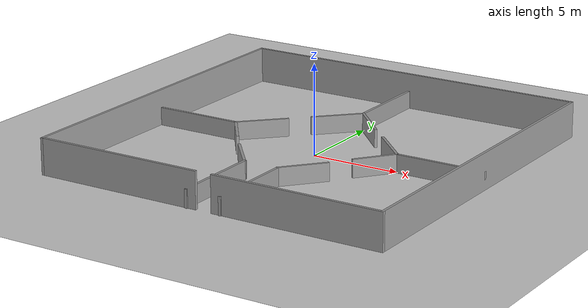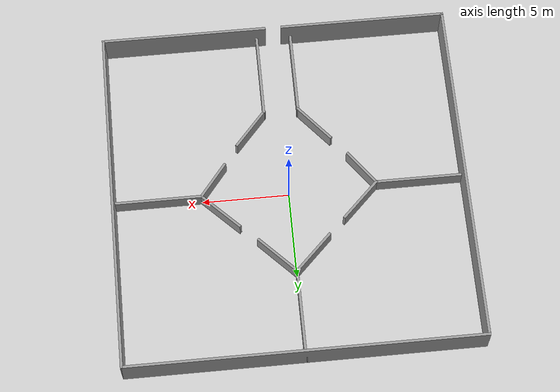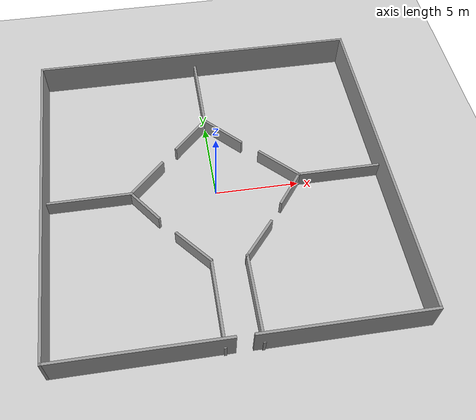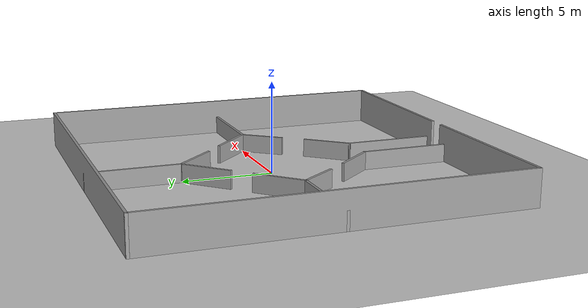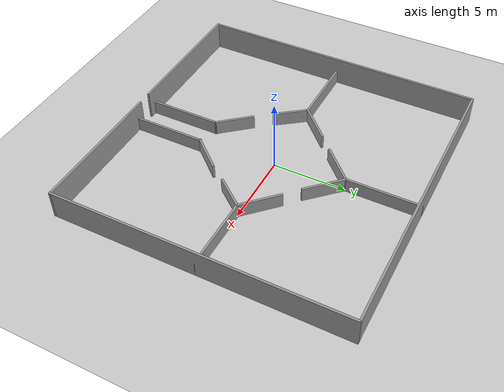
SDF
<sdf version="1.7">
 <world name="default">
  <light name="sun" type="directional">
   <pose>0 0 10 0 -0 0</pose>
   <diffuse>0.8 0.8 0.8 1</diffuse>
   <specular>0.2 0.2 0.2 1</specular>
   <attenuation>
    <range>1000</range>
    <constant>0.9</constant>
    <linear>0.01</linear>
    <quadratic>0.001</quadratic>
   </attenuation>
   <direction>-0.5 0.1 -0.9</direction>
   <spot><inner_angle>0</inner_angle><outer_angle>0</outer_angle><falloff>0</falloff></spot>
  </light>
  <model name="ground_plane">
   <static>1</static>
   <link name="link">
    <collision name="collision">
     <geometry><plane><normal>0 0 1</normal><size>100 100</size></plane></geometry>
     <surface>
      <contact><collide_bitmask>65535</collide_bitmask></contact>
      <friction><ode><mu>100</mu><mu2>50</mu2></ode></friction>
     </surface>
    </collision>
    <visual name="visual">
     <cast_shadows>0</cast_shadows>
     <geometry><plane><normal>0 0 1</normal><size>100 100</size></plane></geometry>
     <material>
      <script><uri>file://media/materials/scripts/gazebo.material</uri><name>Gazebo/Grey</name></script>
     </material>
    </visual>
   </link>
  </model>
  <gravity>0 0 -9.8</gravity>
  <magnetic_field>6e-06 2.3e-05 -4.2e-05</magnetic_field>
  <atmosphere type="adiabatic"/>
  <physics type="ode">
   <max_step_size>0.001</max_step_size>
   <real_time_factor>1</real_time_factor>
   <real_time_update_rate>1000</real_time_update_rate>
  </physics>
  <scene><ambient>0.4 0.4 0.4 1</ambient><background>0.7 0.7 0.7 1</background><shadows>1</shadows></scene>
  <spherical_coordinates>
   <surface_model>EARTH_WGS84</surface_model>
   <latitude_deg>0</latitude_deg>
   <longitude_deg>0</longitude_deg>
   <elevation>0</elevation>
   <heading_deg>0</heading_deg>
  </spherical_coordinates>
  <model name="simp20">
   <static>true</static>
   <pose>-5e-06 0 0 0 -0 0</pose>
   <link name="Wall_0">
    <collision name="Wall_0_Collision">
     <geometry><box><size>20.15 0.15 2</size></box></geometry>
     <pose>0 0 1 0 -0 0</pose>
    </collision>
    <visual name="Wall_0_Visual">
     <pose>0 0 1 0 -0 0</pose>
     <geometry><box><size>20.15 0.15 2</size></box></geometry>
     <material>
      <script><uri>file://media/materials/scripts/gazebo.material</uri><name>Gazebo/Grey</name></script>
      <ambient>1 1 1 1</ambient>
     </material>
     <meta><layer>0</layer></meta>
    </visual>
    <pose>5e-06 10 0 0 -0 0</pose>
   </link>
   <link name="Wall_17">
    <collision name="Wall_17_Collision">
     <geometry><box><size>5.15 0.15 1</size></box></geometry>
     <pose>0 0 0.5 0 -0 0</pose>
    </collision>
    <visual name="Wall_17_Visual">
     <pose>0 0 0.5 0 -0 0</pose>
     <geometry><box><size>5.15 0.15 1</size></box></geometry>
     <material>
      <script><uri>file://media/materials/scripts/gazebo.material</uri><name>Gazebo/Grey</name></script>
      <ambient>1 1 1 1</ambient>
     </material>
     <meta><layer>0</layer></meta>
    </visual>
    <pose>5e-06 7.5 0 0 -0 -1.5708</pose>
   </link>
   <link name="Wall_19">
    <collision name="Wall_19_Collision">
     <geometry><box><size>5.15002 0.15 1</size></box></geometry>
     <pose>0 0 0.5 0 -0 0</pose>
    </collision>
    <visual name="Wall_19_Visual">
     <pose>0 0 0.5 0 -0 0</pose>
     <geometry><box><size>5.15002 0.15 1</size></box></geometry>
     <material>
      <script><uri>file://media/materials/scripts/gazebo.material</uri><name>Gazebo/Grey</name></script>
      <ambient>1 1 1 1</ambient>
     </material>
     <meta><layer>0</layer></meta>
    </visual>
    <pose>-7.5 0.035 0 0 -0 3.14159</pose>
   </link>
   <link name="Wall_22">
    <collision name="Wall_22_Collision">
     <geometry><box><size>5.15 0.15 1</size></box></geometry>
     <pose>0 0 0.5 0 -0 0</pose>
    </collision>
    <visual name="Wall_22_Visual">
     <pose>0 0 0.5 0 -0 0</pose>
     <geometry><box><size>5.15 0.15 1</size></box></geometry>
     <material>
      <script><uri>file://media/materials/scripts/gazebo.material</uri><name>Gazebo/Grey</name></script>
      <ambient>1 1 1 1</ambient>
     </material>
     <meta><layer>0</layer></meta>
    </visual>
    <pose>-0.999995 -7.5 0 0 -0 -1.5708</pose>
   </link>
   <link name="Wall_27">
    <collision name="Wall_27_Collision">
     <geometry><box><size>5.15 0.15 1</size></box></geometry>
     <pose>0 0 0.5 0 -0 0</pose>
    </collision>
    <visual name="Wall_27_Visual">
     <pose>0 0 0.5 0 -0 0</pose>
     <geometry><box><size>5.15 0.15 1</size></box></geometry>
     <material>
      <script><uri>file://media/materials/scripts/gazebo.material</uri><name>Gazebo/Grey</name></script>
      <ambient>1 1 1 1</ambient>
     </material>
     <meta><layer>0</layer></meta>
    </visual>
    <pose>7.5 0 0 0 -0 3.14159</pose>
   </link>
   <link name="Wall_3">
    <collision name="Wall_3_Collision">
     <geometry><box><size>20.088 0.15 2</size></box></geometry>
     <pose>0 0 1 0 -0 0</pose>
    </collision>
    <visual name="Wall_3_Visual">
     <pose>0 0 1 0 -0 0</pose>
     <geometry><box><size>20.088 0.15 2</size></box></geometry>
     <material>
      <script><uri>file://media/materials/scripts/gazebo.material</uri><name>Gazebo/Grey</name></script>
      <ambient>1 1 1 1</ambient>
     </material>
     <meta><layer>0</layer></meta>
    </visual>
    <pose>10 0.031 0 0 -0 -1.5708</pose>
   </link>
   <link name="Wall_30">
    <collision name="Wall_30_Collision">
     <geometry><box><size>5.15 0.15 1</size></box></geometry>
     <pose>0 0 0.5 0 -0 0</pose>
    </collision>
    <visual name="Wall_30_Visual">
     <pose>0 0 0.5 0 -0 0</pose>
     <geometry><box><size>5.15 0.15 1</size></box></geometry>
     <material>
      <script><uri>file://media/materials/scripts/gazebo.material</uri><name>Gazebo/Grey</name></script>
      <ambient>1 1 1 1</ambient>
     </material>
     <meta><layer>0</layer></meta>
    </visual>
    <pose>1.00001 -7.5 0 0 -0 1.5708</pose>
   </link>
   <link name="Wall_33">
    <collision name="Wall_33_Collision">
     <geometry><box><size>2.99964 0.15 1</size></box></geometry>
     <pose>0 0 0.5 0 -0 0</pose>
    </collision>
    <visual name="Wall_33_Visual">
     <pose>0 0 0.5 0 -0 0</pose>
     <geometry><box><size>2.99964 0.15 1</size></box></geometry>
     <material>
      <script><uri>file://media/materials/scripts/gazebo.material</uri><name>Gazebo/Grey</name></script>
      <ambient>1 1 1 1</ambient>
     </material>
     <meta><layer>0</layer></meta>
    </visual>
    <pose>-1.0075 3.9925 0 0 -0 -2.35619</pose>
   </link>
   <link name="Wall_35">
    <collision name="Wall_35_Collision">
     <geometry><box><size>2.97561 0.15 1</size></box></geometry>
     <pose>0 0 0.5 0 -0 0</pose>
    </collision>
    <visual name="Wall_35_Visual">
     <pose>0 0 0.5 0 -0 0</pose>
     <geometry><box><size>2.97561 0.15 1</size></box></geometry>
     <material>
      <script><uri>file://media/materials/scripts/gazebo.material</uri><name>Gazebo/Grey</name></script>
      <ambient>1 1 1 1</ambient>
     </material>
     <meta><layer>0</layer></meta>
    </visual>
    <pose>-3.9985 1.0315 0 0 -0 0.782896</pose>
   </link>
   <link name="Wall_37">
    <collision name="Wall_37_Collision">
     <geometry><box><size>3.00009 0.15 1</size></box></geometry>
     <pose>0 0 0.5 0 -0 0</pose>
    </collision>
    <visual name="Wall_37_Visual">
     <pose>0 0 0.5 0 -0 0</pose>
     <geometry><box><size>3.00009 0.15 1</size></box></geometry>
     <material>
      <script><uri>file://media/materials/scripts/gazebo.material</uri><name>Gazebo/Grey</name></script>
      <ambient>1 1 1 1</ambient>
     </material>
     <meta><layer>0</layer></meta>
    </visual>
    <pose>0.989505 3.9745 0 0 -0 -0.803262</pose>
   </link>
   <link name="Wall_39">
    <collision name="Wall_39_Collision">
     <geometry><box><size>2.99964 0.15 1</size></box></geometry>
     <pose>0 0 0.5 0 -0 0</pose>
    </collision>
    <visual name="Wall_39_Visual">
     <pose>0 0 0.5 0 -0 0</pose>
     <geometry><box><size>2.99964 0.15 1</size></box></geometry>
     <material>
      <script><uri>file://media/materials/scripts/gazebo.material</uri><name>Gazebo/Grey</name></script>
      <ambient>1 1 1 1</ambient>
     </material>
     <meta><layer>0</layer></meta>
    </visual>
    <pose>3.9925 1.0075 0 0 -0 2.35619</pose>
   </link>
   <link name="Wall_45">
    <collision name="Wall_45_Collision">
     <geometry><box><size>2.52782 0.15 1</size></box></geometry>
     <pose>0 0 0.5 0 -0 0</pose>
    </collision>
    <visual name="Wall_45_Visual">
     <pose>0 0 0.5 0 -0 0</pose>
     <geometry><box><size>2.52782 0.15 1</size></box></geometry>
     <material>
      <script><uri>file://media/materials/scripts/gazebo.material</uri><name>Gazebo/Grey</name></script>
      <ambient>1 1 1 1</ambient>
     </material>
     <meta><layer>0</layer></meta>
    </visual>
    <pose>-4.29049 -0.919 0 0 -0 -0.931333</pose>
   </link>
   <link name="Wall_48">
    <collision name="Wall_48_Collision">
     <geometry><box><size>2.75 0.15 1</size></box></geometry>
     <pose>0 0 0.5 0 -0 0</pose>
    </collision>
    <visual name="Wall_48_Visual">
     <pose>0 0 0.5 0 -0 0</pose>
     <geometry><box><size>2.75 0.15 1</size></box></geometry>
     <material>
      <script><uri>file://media/materials/scripts/gazebo.material</uri><name>Gazebo/Grey</name></script>
      <ambient>1 1 1 1</ambient>
     </material>
     <meta><layer>0</layer></meta>
    </visual>
    <pose>-1.8395 -4.0075 0 0 -0 2.27287</pose>
   </link>
   <link name="Wall_5">
    <pose>5e-06 -9.938 0 0 -0 3.14159</pose>
    <visual name="Wall_5_Visual_0">
     <pose>-5.26491 0 1 0 -0 0</pose>
     <geometry><box><size>9.62018 0.15 2</size></box></geometry>
     <material>
      <script><uri>file://media/materials/scripts/gazebo.material</uri><name>Gazebo/Grey</name></script>
      <ambient>1 1 1 1</ambient>
     </material>
     <meta><layer>0</layer></meta>
    </visual>
    <collision name="Wall_5_Collision_0">
     <geometry><box><size>9.62018 0.15 2</size></box></geometry>
     <pose>-5.26491 0 1 0 -0 0</pose>
    </collision>
    <visual name="Wall_5_Visual_1">
     <pose>5.26009 0 1 0 -0 0</pose>
     <geometry><box><size>9.62982 0.15 2</size></box></geometry>
     <material>
      <script><uri>file://media/materials/scripts/gazebo.material</uri><name>Gazebo/Grey</name></script>
      <ambient>1 1 1 1</ambient>
     </material>
     <meta><layer>0</layer></meta>
    </visual>
    <collision name="Wall_5_Collision_1">
     <geometry><box><size>9.62982 0.15 2</size></box></geometry>
     <pose>5.26009 0 1 0 -0 0</pose>
    </collision>
   </link>
   <link name="Wall_52">
    <collision name="Wall_52_Collision">
     <geometry><box><size>2.7726 0.15 1</size></box></geometry>
     <pose>0 0 0.5 0 -0 0</pose>
    </collision>
    <visual name="Wall_52_Visual">
     <pose>0 0 0.5 0 -0 0</pose>
     <geometry><box><size>2.7726 0.15 1</size></box></geometry>
     <material>
      <script><uri>file://media/materials/scripts/gazebo.material</uri><name>Gazebo/Grey</name></script>
      <ambient>1 1 1 1</ambient>
     </material>
     <meta><layer>0</layer></meta>
    </visual>
    <pose>1.85701 -4.0075 0 0 -0 0.858531</pose>
   </link>
   <link name="Wall_54">
    <collision name="Wall_54_Collision">
     <geometry><box><size>2.503 0.15 1</size></box></geometry>
     <pose>0 0 0.5 0 -0 0</pose>
    </collision>
    <visual name="Wall_54_Visual">
     <pose>0 0 0.5 0 -0 0</pose>
     <geometry><box><size>2.503 0.15 1</size></box></geometry>
     <material>
      <script><uri>file://media/materials/scripts/gazebo.material</uri><name>Gazebo/Grey</name></script>
      <ambient>1 1 1 1</ambient>
     </material>
     <meta><layer>0</layer></meta>
    </visual>
    <pose>4.27301 -0.925 0 0 -0 -2.23691</pose>
   </link>
   <link name="Wall_7">
    <collision name="Wall_7_Collision">
     <geometry><box><size>20.088 0.15 2</size></box></geometry>
     <pose>0 0 1 0 -0 0</pose>
    </collision>
    <visual name="Wall_7_Visual">
     <pose>0 0 1 0 -0 0</pose>
     <geometry><box><size>20.088 0.15 2</size></box></geometry>
     <material>
      <script><uri>file://media/materials/scripts/gazebo.material</uri><name>Gazebo/Grey</name></script>
      <ambient>1 1 1 1</ambient>
     </material>
     <meta><layer>0</layer></meta>
    </visual>
    <pose>-10 0.031 0 0 -0 -1.5708</pose>
   </link>
   <static>1</static>
  </model>
 </world>
</sdf>
